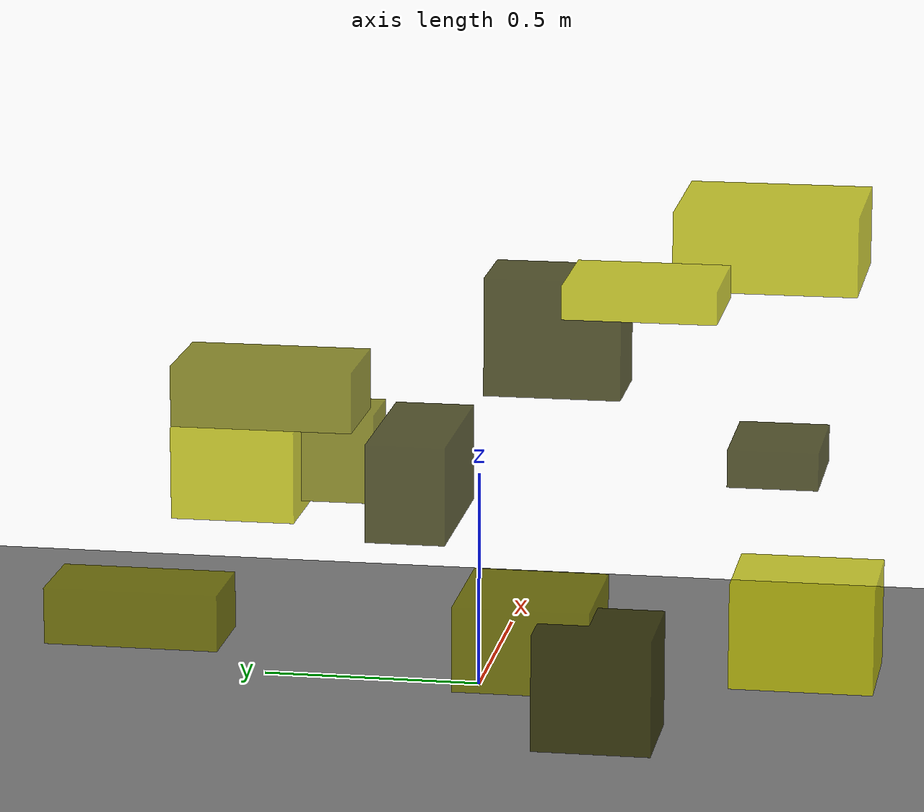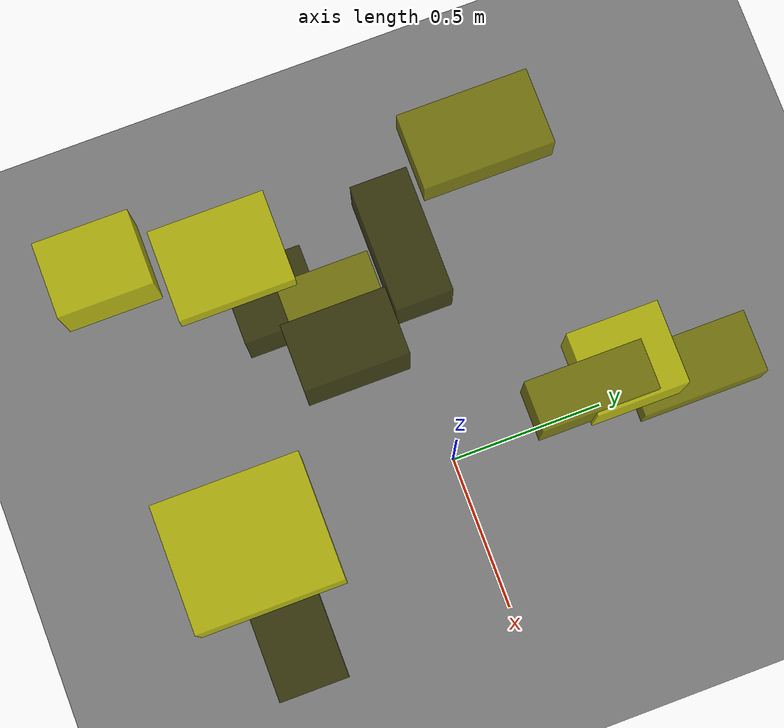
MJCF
<?xml version="1.0"?>
<mujoco model="obstacle_scene">
  <compiler angle="radian" coordinate="local"/>
  <option timestep="0.001" gravity="0 0 -9.81"/>

  <asset>
    <material name="obstacle_mat" rgba="0.8 0.8 0.0 0.8"/>
    <material name="ground_mat" rgba="0.5 0.5 0.5 1"/>
  </asset>

  <worldbody>
    <!-- Ground plane -->
    <geom name="ground" type="plane" size="3 3 0.1" material="ground_mat"/>

    <!-- Obstacles -->
    <body name="obstacle_0" pos="0.396866 -0.640498 0.465722">
      <geom name="obs_0" type="box" size="0.136352 0.105396 0.044352" rgba="0.2 0.2 0.0 0.8"/>
    </body>
    <body name="obstacle_1" pos="0.003309 0.409739 0.540925">
      <geom name="obs_1" type="box" size="0.077320 0.179677 0.102847" rgba="0.5 0.5 0.0 0.8"/>
    </body>
    <body name="obstacle_2" pos="-0.037176 0.538416 0.513866">
      <geom name="obs_2" type="box" size="0.128416 0.141139 0.104899" rgba="0.8 0.8 0.0 0.8"/>
    </body>
    <body name="obstacle_3" pos="-0.299348 -0.221565 0.912436">
      <geom name="obs_3" type="box" size="0.096210 0.149705 0.130287" rgba="0.2 0.2 0.0 0.8"/>
    </body>
    <body name="obstacle_4" pos="-0.496941 -0.192958 0.282161">
      <geom name="obs_4" type="box" size="0.154762 0.149088 0.094488" rgba="0.5 0.5 0.0 0.8"/>
    </body>
    <body name="obstacle_5" pos="-0.612428 -0.453397 1.075554">
      <geom name="obs_5" type="box" size="0.128879 0.163087 0.035651" rgba="0.8 0.8 0.0 0.8"/>
    </body>
    <body name="obstacle_6" pos="-0.566940 0.038255 0.649604">
      <geom name="obs_6" type="box" size="0.191120 0.085614 0.106122" rgba="0.2 0.2 0.0 0.8"/>
    </body>
    <body name="obstacle_7" pos="0.001881 0.795254 0.143907">
      <geom name="obs_7" type="box" size="0.102110 0.203163 0.066165" rgba="0.5 0.5 0.0 0.8"/>
    </body>
    <body name="obstacle_8" pos="0.128035 -0.645651 1.039672">
      <geom name="obs_8" type="box" size="0.178382 0.205642 0.088731" rgba="0.8 0.8 0.0 0.8"/>
    </body>
    <body name="obstacle_9" pos="-0.630769 -0.359148 0.222369">
      <geom name="obs_9" type="box" size="0.115748 0.129102 0.128246" rgba="0.2 0.2 0.0 0.8"/>
    </body>
    <body name="obstacle_10" pos="-0.746544 0.325567 0.871209">
      <geom name="obs_10" type="box" size="0.112406 0.192679 0.064641" rgba="0.5 0.5 0.0 0.8"/>
    </body>
    <body name="obstacle_11" pos="-0.859699 -0.824782 0.441240">
      <geom name="obs_11" type="box" size="0.118911 0.149294 0.111514" rgba="0.8 0.8 0.0 0.8"/>
    </body>
  </worldbody>
</mujoco>
